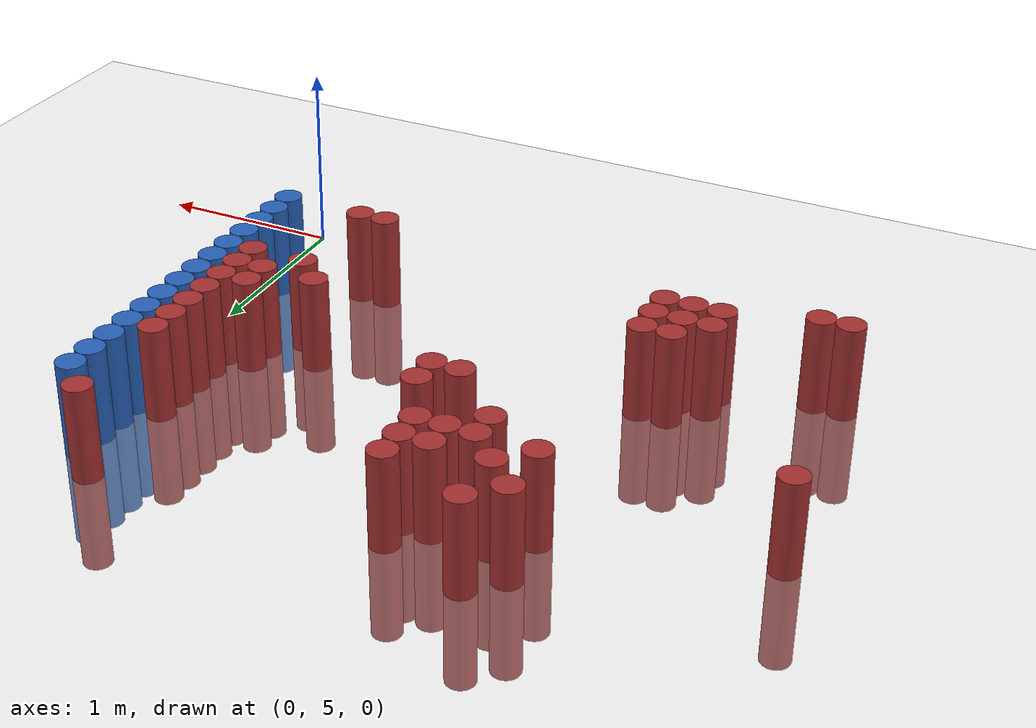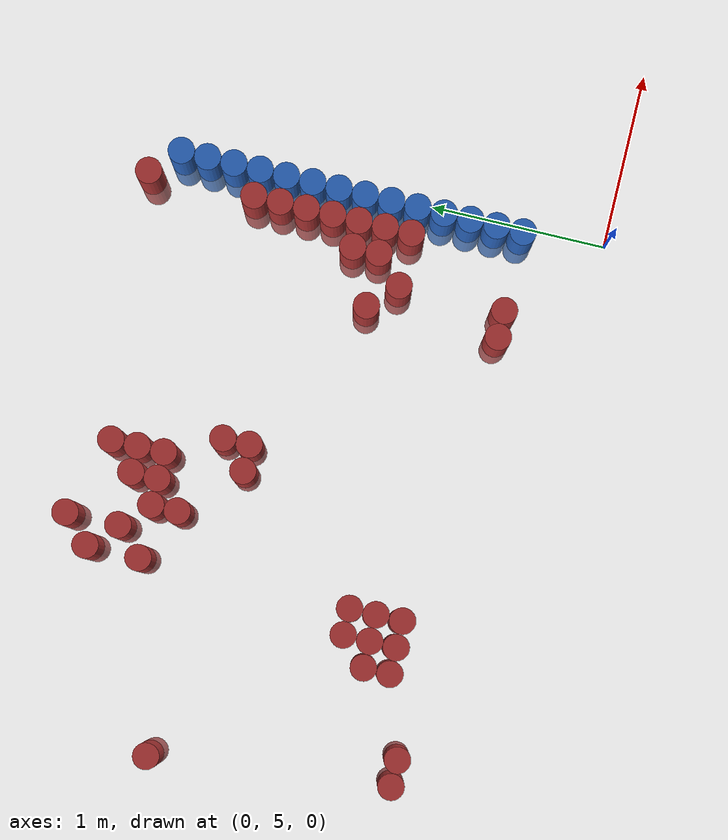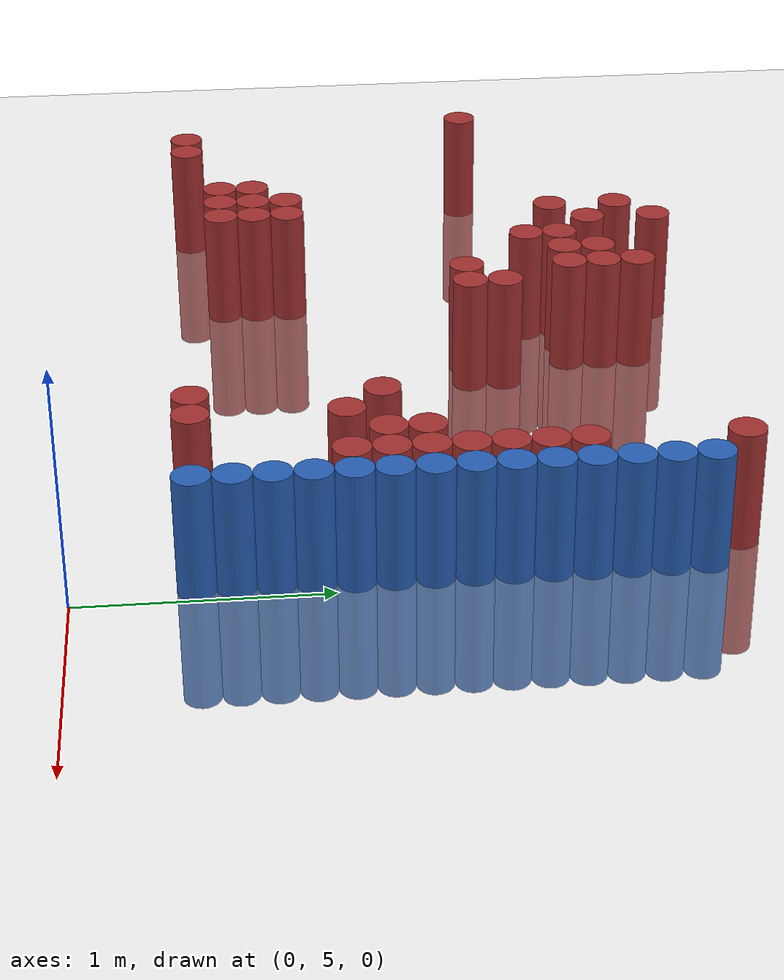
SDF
<sdf version="1.6">
 <world name="default">
  <model name="ground_plane">
   <static>1</static>
   <link name="link">
    <collision name="collision">
     <geometry><plane><normal>0 0 1</normal><size>100 100</size></plane></geometry>
     <surface><friction><ode><mu>100</mu><mu2>50</mu2></ode></friction></surface>
    </collision>
    <visual name="visual">
     <cast_shadows>0</cast_shadows>
     <geometry><plane><normal>0 0 1</normal><size>100 100</size></plane></geometry>
     <material>
      <script><uri>file://media/materials/scripts/gazebo.material</uri><name>Gazebo/Grey</name></script>
     </material>
    </visual>
   </link>
  </model>
  <model name="unit_cylinder_153">
   <static>1</static>
   <pose>-3.375000 6.825000 0.000000 0.000000 0.000000 0.000000</pose>
   <link name="link">
    <inertial>
     <mass>1</mass>
     <inertia><ixx>0.145833</ixx><ixy>0</ixy><ixz>0</ixz><iyy>0.145833</iyy><iyz>0</iyz><izz>0.125</izz></inertia>
    </inertial>
    <collision name="collision">
     <geometry><cylinder><radius>0.075000</radius><length>1</length></cylinder></geometry>
    </collision>
    <visual name="visual">
     <geometry><cylinder><radius>0.075000</radius><length>1</length></cylinder></geometry>
     <material>
      <ambient>0.648000 0.192000 0.192000 1</ambient>
      <diffuse>0.648000 0.192000 0.192000 1</diffuse>
     </material>
     <material>
      <script><name>Gazebo/Grey</name><uri>file://media/materials/scripts/gazebo.material</uri></script>
     </material>
    </visual>
   </link>
  </model>
  <model name="unit_cylinder_157">
   <static>1</static>
   <pose>-3.225000 5.475000 0.000000 0.000000 0.000000 0.000000</pose>
   <link name="link">
    <inertial>
     <mass>1</mass>
     <inertia><ixx>0.145833</ixx><ixy>0</ixy><ixz>0</ixz><iyy>0.145833</iyy><iyz>0</iyz><izz>0.125</izz></inertia>
    </inertial>
    <collision name="collision">
     <geometry><cylinder><radius>0.075000</radius><length>1</length></cylinder></geometry>
    </collision>
    <visual name="visual">
     <geometry><cylinder><radius>0.075000</radius><length>1</length></cylinder></geometry>
     <material>
      <ambient>0.648000 0.192000 0.192000 1</ambient>
      <diffuse>0.648000 0.192000 0.192000 1</diffuse>
     </material>
     <material>
      <script><name>Gazebo/Grey</name><uri>file://media/materials/scripts/gazebo.material</uri></script>
     </material>
    </visual>
   </link>
  </model>
  <model name="unit_cylinder_162">
   <static>1</static>
   <pose>-3.075000 5.475000 0.000000 0.000000 0.000000 0.000000</pose>
   <link name="link">
    <inertial>
     <mass>1</mass>
     <inertia><ixx>0.145833</ixx><ixy>0</ixy><ixz>0</ixz><iyy>0.145833</iyy><iyz>0</iyz><izz>0.125</izz></inertia>
    </inertial>
    <collision name="collision">
     <geometry><cylinder><radius>0.075000</radius><length>1</length></cylinder></geometry>
    </collision>
    <visual name="visual">
     <geometry><cylinder><radius>0.075000</radius><length>1</length></cylinder></geometry>
     <material>
      <ambient>0.648000 0.192000 0.192000 1</ambient>
      <diffuse>0.648000 0.192000 0.192000 1</diffuse>
     </material>
     <material>
      <script><name>Gazebo/Grey</name><uri>file://media/materials/scripts/gazebo.material</uri></script>
     </material>
    </visual>
   </link>
  </model>
  <model name="unit_cylinder_176">
   <static>1</static>
   <pose>-2.625000 5.625000 0.000000 0.000000 0.000000 0.000000</pose>
   <link name="link">
    <inertial>
     <mass>1</mass>
     <inertia><ixx>0.145833</ixx><ixy>0</ixy><ixz>0</ixz><iyy>0.145833</iyy><iyz>0</iyz><izz>0.125</izz></inertia>
    </inertial>
    <collision name="collision">
     <geometry><cylinder><radius>0.075000</radius><length>1</length></cylinder></geometry>
    </collision>
    <visual name="visual">
     <geometry><cylinder><radius>0.075000</radius><length>1</length></cylinder></geometry>
     <material>
      <ambient>0.648000 0.192000 0.192000 1</ambient>
      <diffuse>0.648000 0.192000 0.192000 1</diffuse>
     </material>
     <material>
      <script><name>Gazebo/Grey</name><uri>file://media/materials/scripts/gazebo.material</uri></script>
     </material>
    </visual>
   </link>
  </model>
  <model name="unit_cylinder_177">
   <static>1</static>
   <pose>-2.625000 5.775000 0.000000 0.000000 0.000000 0.000000</pose>
   <link name="link">
    <inertial>
     <mass>1</mass>
     <inertia><ixx>0.145833</ixx><ixy>0</ixy><ixz>0</ixz><iyy>0.145833</iyy><iyz>0</iyz><izz>0.125</izz></inertia>
    </inertial>
    <collision name="collision">
     <geometry><cylinder><radius>0.075000</radius><length>1</length></cylinder></geometry>
    </collision>
    <visual name="visual">
     <geometry><cylinder><radius>0.075000</radius><length>1</length></cylinder></geometry>
     <material>
      <ambient>0.648000 0.192000 0.192000 1</ambient>
      <diffuse>0.648000 0.192000 0.192000 1</diffuse>
     </material>
     <material>
      <script><name>Gazebo/Grey</name><uri>file://media/materials/scripts/gazebo.material</uri></script>
     </material>
    </visual>
   </link>
  </model>
  <model name="unit_cylinder_181">
   <static>1</static>
   <pose>-2.475000 5.625000 0.000000 0.000000 0.000000 0.000000</pose>
   <link name="link">
    <inertial>
     <mass>1</mass>
     <inertia><ixx>0.145833</ixx><ixy>0</ixy><ixz>0</ixz><iyy>0.145833</iyy><iyz>0</iyz><izz>0.125</izz></inertia>
    </inertial>
    <collision name="collision">
     <geometry><cylinder><radius>0.075000</radius><length>1</length></cylinder></geometry>
    </collision>
    <visual name="visual">
     <geometry><cylinder><radius>0.075000</radius><length>1</length></cylinder></geometry>
     <material>
      <ambient>0.648000 0.192000 0.192000 1</ambient>
      <diffuse>0.648000 0.192000 0.192000 1</diffuse>
     </material>
     <material>
      <script><name>Gazebo/Grey</name><uri>file://media/materials/scripts/gazebo.material</uri></script>
     </material>
    </visual>
   </link>
  </model>
  <model name="unit_cylinder_182">
   <static>1</static>
   <pose>-2.475000 5.775000 0.000000 0.000000 0.000000 0.000000</pose>
   <link name="link">
    <inertial>
     <mass>1</mass>
     <inertia><ixx>0.145833</ixx><ixy>0</ixy><ixz>0</ixz><iyy>0.145833</iyy><iyz>0</iyz><izz>0.125</izz></inertia>
    </inertial>
    <collision name="collision">
     <geometry><cylinder><radius>0.075000</radius><length>1</length></cylinder></geometry>
    </collision>
    <visual name="visual">
     <geometry><cylinder><radius>0.075000</radius><length>1</length></cylinder></geometry>
     <material>
      <ambient>0.648000 0.192000 0.192000 1</ambient>
      <diffuse>0.648000 0.192000 0.192000 1</diffuse>
     </material>
     <material>
      <script><name>Gazebo/Grey</name><uri>file://media/materials/scripts/gazebo.material</uri></script>
     </material>
    </visual>
   </link>
  </model>
  <model name="unit_cylinder_183">
   <static>1</static>
   <pose>-2.475000 5.925000 0.000000 0.000000 0.000000 0.000000</pose>
   <link name="link">
    <inertial>
     <mass>1</mass>
     <inertia><ixx>0.145833</ixx><ixy>0</ixy><ixz>0</ixz><iyy>0.145833</iyy><iyz>0</iyz><izz>0.125</izz></inertia>
    </inertial>
    <collision name="collision">
     <geometry><cylinder><radius>0.075000</radius><length>1</length></cylinder></geometry>
    </collision>
    <visual name="visual">
     <geometry><cylinder><radius>0.075000</radius><length>1</length></cylinder></geometry>
     <material>
      <ambient>0.648000 0.192000 0.192000 1</ambient>
      <diffuse>0.648000 0.192000 0.192000 1</diffuse>
     </material>
     <material>
      <script><name>Gazebo/Grey</name><uri>file://media/materials/scripts/gazebo.material</uri></script>
     </material>
    </visual>
   </link>
  </model>
  <model name="unit_cylinder_186">
   <static>1</static>
   <pose>-2.325000 5.625000 0.000000 0.000000 0.000000 0.000000</pose>
   <link name="link">
    <inertial>
     <mass>1</mass>
     <inertia><ixx>0.145833</ixx><ixy>0</ixy><ixz>0</ixz><iyy>0.145833</iyy><iyz>0</iyz><izz>0.125</izz></inertia>
    </inertial>
    <collision name="collision">
     <geometry><cylinder><radius>0.075000</radius><length>1</length></cylinder></geometry>
    </collision>
    <visual name="visual">
     <geometry><cylinder><radius>0.075000</radius><length>1</length></cylinder></geometry>
     <material>
      <ambient>0.648000 0.192000 0.192000 1</ambient>
      <diffuse>0.648000 0.192000 0.192000 1</diffuse>
     </material>
     <material>
      <script><name>Gazebo/Grey</name><uri>file://media/materials/scripts/gazebo.material</uri></script>
     </material>
    </visual>
   </link>
  </model>
  <model name="unit_cylinder_187">
   <static>1</static>
   <pose>-2.325000 5.775000 0.000000 0.000000 0.000000 0.000000</pose>
   <link name="link">
    <inertial>
     <mass>1</mass>
     <inertia><ixx>0.145833</ixx><ixy>0</ixy><ixz>0</ixz><iyy>0.145833</iyy><iyz>0</iyz><izz>0.125</izz></inertia>
    </inertial>
    <collision name="collision">
     <geometry><cylinder><radius>0.075000</radius><length>1</length></cylinder></geometry>
    </collision>
    <visual name="visual">
     <geometry><cylinder><radius>0.075000</radius><length>1</length></cylinder></geometry>
     <material>
      <ambient>0.648000 0.192000 0.192000 1</ambient>
      <diffuse>0.648000 0.192000 0.192000 1</diffuse>
     </material>
     <material>
      <script><name>Gazebo/Grey</name><uri>file://media/materials/scripts/gazebo.material</uri></script>
     </material>
    </visual>
   </link>
  </model>
  <model name="unit_cylinder_188">
   <static>1</static>
   <pose>-2.325000 5.925000 0.000000 0.000000 0.000000 0.000000</pose>
   <link name="link">
    <inertial>
     <mass>1</mass>
     <inertia><ixx>0.145833</ixx><ixy>0</ixy><ixz>0</ixz><iyy>0.145833</iyy><iyz>0</iyz><izz>0.125</izz></inertia>
    </inertial>
    <collision name="collision">
     <geometry><cylinder><radius>0.075000</radius><length>1</length></cylinder></geometry>
    </collision>
    <visual name="visual">
     <geometry><cylinder><radius>0.075000</radius><length>1</length></cylinder></geometry>
     <material>
      <ambient>0.648000 0.192000 0.192000 1</ambient>
      <diffuse>0.648000 0.192000 0.192000 1</diffuse>
     </material>
     <material>
      <script><name>Gazebo/Grey</name><uri>file://media/materials/scripts/gazebo.material</uri></script>
     </material>
    </visual>
   </link>
  </model>
  <model name="unit_cylinder_189">
   <static>1</static>
   <pose>-2.325000 7.125000 0.000000 0.000000 0.000000 0.000000</pose>
   <link name="link">
    <inertial>
     <mass>1</mass>
     <inertia><ixx>0.145833</ixx><ixy>0</ixy><ixz>0</ixz><iyy>0.145833</iyy><iyz>0</iyz><izz>0.125</izz></inertia>
    </inertial>
    <collision name="collision">
     <geometry><cylinder><radius>0.075000</radius><length>1</length></cylinder></geometry>
    </collision>
    <visual name="visual">
     <geometry><cylinder><radius>0.075000</radius><length>1</length></cylinder></geometry>
     <material>
      <ambient>0.648000 0.192000 0.192000 1</ambient>
      <diffuse>0.648000 0.192000 0.192000 1</diffuse>
     </material>
     <material>
      <script><name>Gazebo/Grey</name><uri>file://media/materials/scripts/gazebo.material</uri></script>
     </material>
    </visual>
   </link>
  </model>
  <model name="unit_cylinder_190">
   <static>1</static>
   <pose>-2.325000 7.425000 0.000000 0.000000 0.000000 0.000000</pose>
   <link name="link">
    <inertial>
     <mass>1</mass>
     <inertia><ixx>0.145833</ixx><ixy>0</ixy><ixz>0</ixz><iyy>0.145833</iyy><iyz>0</iyz><izz>0.125</izz></inertia>
    </inertial>
    <collision name="collision">
     <geometry><cylinder><radius>0.075000</radius><length>1</length></cylinder></geometry>
    </collision>
    <visual name="visual">
     <geometry><cylinder><radius>0.075000</radius><length>1</length></cylinder></geometry>
     <material>
      <ambient>0.648000 0.192000 0.192000 1</ambient>
      <diffuse>0.648000 0.192000 0.192000 1</diffuse>
     </material>
     <material>
      <script><name>Gazebo/Grey</name><uri>file://media/materials/scripts/gazebo.material</uri></script>
     </material>
    </visual>
   </link>
  </model>
  <model name="unit_cylinder_194">
   <static>1</static>
   <pose>-2.175000 7.275000 0.000000 0.000000 0.000000 0.000000</pose>
   <link name="link">
    <inertial>
     <mass>1</mass>
     <inertia><ixx>0.145833</ixx><ixy>0</ixy><ixz>0</ixz><iyy>0.145833</iyy><iyz>0</iyz><izz>0.125</izz></inertia>
    </inertial>
    <collision name="collision">
     <geometry><cylinder><radius>0.075000</radius><length>1</length></cylinder></geometry>
    </collision>
    <visual name="visual">
     <geometry><cylinder><radius>0.075000</radius><length>1</length></cylinder></geometry>
     <material>
      <ambient>0.648000 0.192000 0.192000 1</ambient>
      <diffuse>0.648000 0.192000 0.192000 1</diffuse>
     </material>
     <material>
      <script><name>Gazebo/Grey</name><uri>file://media/materials/scripts/gazebo.material</uri></script>
     </material>
    </visual>
   </link>
  </model>
  <model name="unit_cylinder_195">
   <static>1</static>
   <pose>-2.175000 7.575000 0.000000 0.000000 0.000000 0.000000</pose>
   <link name="link">
    <inertial>
     <mass>1</mass>
     <inertia><ixx>0.145833</ixx><ixy>0</ixy><ixz>0</ixz><iyy>0.145833</iyy><iyz>0</iyz><izz>0.125</izz></inertia>
    </inertial>
    <collision name="collision">
     <geometry><cylinder><radius>0.075000</radius><length>1</length></cylinder></geometry>
    </collision>
    <visual name="visual">
     <geometry><cylinder><radius>0.075000</radius><length>1</length></cylinder></geometry>
     <material>
      <ambient>0.648000 0.192000 0.192000 1</ambient>
      <diffuse>0.648000 0.192000 0.192000 1</diffuse>
     </material>
     <material>
      <script><name>Gazebo/Grey</name><uri>file://media/materials/scripts/gazebo.material</uri></script>
     </material>
    </visual>
   </link>
  </model>
  <model name="unit_cylinder_198">
   <static>1</static>
   <pose>-2.025000 6.975000 0.000000 0.000000 0.000000 0.000000</pose>
   <link name="link">
    <inertial>
     <mass>1</mass>
     <inertia><ixx>0.145833</ixx><ixy>0</ixy><ixz>0</ixz><iyy>0.145833</iyy><iyz>0</iyz><izz>0.125</izz></inertia>
    </inertial>
    <collision name="collision">
     <geometry><cylinder><radius>0.075000</radius><length>1</length></cylinder></geometry>
    </collision>
    <visual name="visual">
     <geometry><cylinder><radius>0.075000</radius><length>1</length></cylinder></geometry>
     <material>
      <ambient>0.648000 0.192000 0.192000 1</ambient>
      <diffuse>0.648000 0.192000 0.192000 1</diffuse>
     </material>
     <material>
      <script><name>Gazebo/Grey</name><uri>file://media/materials/scripts/gazebo.material</uri></script>
     </material>
    </visual>
   </link>
  </model>
  <model name="unit_cylinder_199">
   <static>1</static>
   <pose>-2.025000 7.125000 0.000000 0.000000 0.000000 0.000000</pose>
   <link name="link">
    <inertial>
     <mass>1</mass>
     <inertia><ixx>0.145833</ixx><ixy>0</ixy><ixz>0</ixz><iyy>0.145833</iyy><iyz>0</iyz><izz>0.125</izz></inertia>
    </inertial>
    <collision name="collision">
     <geometry><cylinder><radius>0.075000</radius><length>1</length></cylinder></geometry>
    </collision>
    <visual name="visual">
     <geometry><cylinder><radius>0.075000</radius><length>1</length></cylinder></geometry>
     <material>
      <ambient>0.648000 0.192000 0.192000 1</ambient>
      <diffuse>0.648000 0.192000 0.192000 1</diffuse>
     </material>
     <material>
      <script><name>Gazebo/Grey</name><uri>file://media/materials/scripts/gazebo.material</uri></script>
     </material>
    </visual>
   </link>
  </model>
  <model name="unit_cylinder_200">
   <static>1</static>
   <pose>-1.875000 7.125000 0.000000 0.000000 0.000000 0.000000</pose>
   <link name="link">
    <inertial>
     <mass>1</mass>
     <inertia><ixx>0.145833</ixx><ixy>0</ixy><ixz>0</ixz><iyy>0.145833</iyy><iyz>0</iyz><izz>0.125</izz></inertia>
    </inertial>
    <collision name="collision">
     <geometry><cylinder><radius>0.075000</radius><length>1</length></cylinder></geometry>
    </collision>
    <visual name="visual">
     <geometry><cylinder><radius>0.075000</radius><length>1</length></cylinder></geometry>
     <material>
      <ambient>0.648000 0.192000 0.192000 1</ambient>
      <diffuse>0.648000 0.192000 0.192000 1</diffuse>
     </material>
     <material>
      <script><name>Gazebo/Grey</name><uri>file://media/materials/scripts/gazebo.material</uri></script>
     </material>
    </visual>
   </link>
  </model>
  <model name="unit_cylinder_201">
   <static>1</static>
   <pose>-1.875000 7.275000 0.000000 0.000000 0.000000 0.000000</pose>
   <link name="link">
    <inertial>
     <mass>1</mass>
     <inertia><ixx>0.145833</ixx><ixy>0</ixy><ixz>0</ixz><iyy>0.145833</iyy><iyz>0</iyz><izz>0.125</izz></inertia>
    </inertial>
    <collision name="collision">
     <geometry><cylinder><radius>0.075000</radius><length>1</length></cylinder></geometry>
    </collision>
    <visual name="visual">
     <geometry><cylinder><radius>0.075000</radius><length>1</length></cylinder></geometry>
     <material>
      <ambient>0.648000 0.192000 0.192000 1</ambient>
      <diffuse>0.648000 0.192000 0.192000 1</diffuse>
     </material>
     <material>
      <script><name>Gazebo/Grey</name><uri>file://media/materials/scripts/gazebo.material</uri></script>
     </material>
    </visual>
   </link>
  </model>
  <model name="unit_cylinder_202">
   <static>1</static>
   <pose>-1.725000 6.675000 0.000000 0.000000 0.000000 0.000000</pose>
   <link name="link">
    <inertial>
     <mass>1</mass>
     <inertia><ixx>0.145833</ixx><ixy>0</ixy><ixz>0</ixz><iyy>0.145833</iyy><iyz>0</iyz><izz>0.125</izz></inertia>
    </inertial>
    <collision name="collision">
     <geometry><cylinder><radius>0.075000</radius><length>1</length></cylinder></geometry>
    </collision>
    <visual name="visual">
     <geometry><cylinder><radius>0.075000</radius><length>1</length></cylinder></geometry>
     <material>
      <ambient>0.648000 0.192000 0.192000 1</ambient>
      <diffuse>0.648000 0.192000 0.192000 1</diffuse>
     </material>
     <material>
      <script><name>Gazebo/Grey</name><uri>file://media/materials/scripts/gazebo.material</uri></script>
     </material>
    </visual>
   </link>
  </model>
  <model name="unit_cylinder_203">
   <static>1</static>
   <pose>-1.725000 7.125000 0.000000 0.000000 0.000000 0.000000</pose>
   <link name="link">
    <inertial>
     <mass>1</mass>
     <inertia><ixx>0.145833</ixx><ixy>0</ixy><ixz>0</ixz><iyy>0.145833</iyy><iyz>0</iyz><izz>0.125</izz></inertia>
    </inertial>
    <collision name="collision">
     <geometry><cylinder><radius>0.075000</radius><length>1</length></cylinder></geometry>
    </collision>
    <visual name="visual">
     <geometry><cylinder><radius>0.075000</radius><length>1</length></cylinder></geometry>
     <material>
      <ambient>0.648000 0.192000 0.192000 1</ambient>
      <diffuse>0.648000 0.192000 0.192000 1</diffuse>
     </material>
     <material>
      <script><name>Gazebo/Grey</name><uri>file://media/materials/scripts/gazebo.material</uri></script>
     </material>
    </visual>
   </link>
  </model>
  <model name="unit_cylinder_204">
   <static>1</static>
   <pose>-1.725000 7.275000 0.000000 0.000000 0.000000 0.000000</pose>
   <link name="link">
    <inertial>
     <mass>1</mass>
     <inertia><ixx>0.145833</ixx><ixy>0</ixy><ixz>0</ixz><iyy>0.145833</iyy><iyz>0</iyz><izz>0.125</izz></inertia>
    </inertial>
    <collision name="collision">
     <geometry><cylinder><radius>0.075000</radius><length>1</length></cylinder></geometry>
    </collision>
    <visual name="visual">
     <geometry><cylinder><radius>0.075000</radius><length>1</length></cylinder></geometry>
     <material>
      <ambient>0.648000 0.192000 0.192000 1</ambient>
      <diffuse>0.648000 0.192000 0.192000 1</diffuse>
     </material>
     <material>
      <script><name>Gazebo/Grey</name><uri>file://media/materials/scripts/gazebo.material</uri></script>
     </material>
    </visual>
   </link>
  </model>
  <model name="unit_cylinder_205">
   <static>1</static>
   <pose>-1.725000 7.425000 0.000000 0.000000 0.000000 0.000000</pose>
   <link name="link">
    <inertial>
     <mass>1</mass>
     <inertia><ixx>0.145833</ixx><ixy>0</ixy><ixz>0</ixz><iyy>0.145833</iyy><iyz>0</iyz><izz>0.125</izz></inertia>
    </inertial>
    <collision name="collision">
     <geometry><cylinder><radius>0.075000</radius><length>1</length></cylinder></geometry>
    </collision>
    <visual name="visual">
     <geometry><cylinder><radius>0.075000</radius><length>1</length></cylinder></geometry>
     <material>
      <ambient>0.648000 0.192000 0.192000 1</ambient>
      <diffuse>0.648000 0.192000 0.192000 1</diffuse>
     </material>
     <material>
      <script><name>Gazebo/Grey</name><uri>file://media/materials/scripts/gazebo.material</uri></script>
     </material>
    </visual>
   </link>
  </model>
  <model name="unit_cylinder_206">
   <static>1</static>
   <pose>-1.575000 6.675000 0.000000 0.000000 0.000000 0.000000</pose>
   <link name="link">
    <inertial>
     <mass>1</mass>
     <inertia><ixx>0.145833</ixx><ixy>0</ixy><ixz>0</ixz><iyy>0.145833</iyy><iyz>0</iyz><izz>0.125</izz></inertia>
    </inertial>
    <collision name="collision">
     <geometry><cylinder><radius>0.075000</radius><length>1</length></cylinder></geometry>
    </collision>
    <visual name="visual">
     <geometry><cylinder><radius>0.075000</radius><length>1</length></cylinder></geometry>
     <material>
      <ambient>0.648000 0.192000 0.192000 1</ambient>
      <diffuse>0.648000 0.192000 0.192000 1</diffuse>
     </material>
     <material>
      <script><name>Gazebo/Grey</name><uri>file://media/materials/scripts/gazebo.material</uri></script>
     </material>
    </visual>
   </link>
  </model>
  <model name="unit_cylinder_207">
   <static>1</static>
   <pose>-1.575000 6.825000 0.000000 0.000000 0.000000 0.000000</pose>
   <link name="link">
    <inertial>
     <mass>1</mass>
     <inertia><ixx>0.145833</ixx><ixy>0</ixy><ixz>0</ixz><iyy>0.145833</iyy><iyz>0</iyz><izz>0.125</izz></inertia>
    </inertial>
    <collision name="collision">
     <geometry><cylinder><radius>0.075000</radius><length>1</length></cylinder></geometry>
    </collision>
    <visual name="visual">
     <geometry><cylinder><radius>0.075000</radius><length>1</length></cylinder></geometry>
     <material>
      <ambient>0.648000 0.192000 0.192000 1</ambient>
      <diffuse>0.648000 0.192000 0.192000 1</diffuse>
     </material>
     <material>
      <script><name>Gazebo/Grey</name><uri>file://media/materials/scripts/gazebo.material</uri></script>
     </material>
    </visual>
   </link>
  </model>
  <model name="unit_cylinder_210">
   <static>1</static>
   <pose>-0.675000 5.475000 0.000000 0.000000 0.000000 0.000000</pose>
   <link name="link">
    <inertial>
     <mass>1</mass>
     <inertia><ixx>0.145833</ixx><ixy>0</ixy><ixz>0</ixz><iyy>0.145833</iyy><iyz>0</iyz><izz>0.125</izz></inertia>
    </inertial>
    <collision name="collision">
     <geometry><cylinder><radius>0.075000</radius><length>1</length></cylinder></geometry>
    </collision>
    <visual name="visual">
     <geometry><cylinder><radius>0.075000</radius><length>1</length></cylinder></geometry>
     <material>
      <ambient>0.648000 0.192000 0.192000 1</ambient>
      <diffuse>0.648000 0.192000 0.192000 1</diffuse>
     </material>
     <material>
      <script><name>Gazebo/Grey</name><uri>file://media/materials/scripts/gazebo.material</uri></script>
     </material>
    </visual>
   </link>
  </model>
  <model name="unit_cylinder_211">
   <static>1</static>
   <pose>-0.675000 6.225000 0.000000 0.000000 0.000000 0.000000</pose>
   <link name="link">
    <inertial>
     <mass>1</mass>
     <inertia><ixx>0.145833</ixx><ixy>0</ixy><ixz>0</ixz><iyy>0.145833</iyy><iyz>0</iyz><izz>0.125</izz></inertia>
    </inertial>
    <collision name="collision">
     <geometry><cylinder><radius>0.075000</radius><length>1</length></cylinder></geometry>
    </collision>
    <visual name="visual">
     <geometry><cylinder><radius>0.075000</radius><length>1</length></cylinder></geometry>
     <material>
      <ambient>0.648000 0.192000 0.192000 1</ambient>
      <diffuse>0.648000 0.192000 0.192000 1</diffuse>
     </material>
     <material>
      <script><name>Gazebo/Grey</name><uri>file://media/materials/scripts/gazebo.material</uri></script>
     </material>
    </visual>
   </link>
  </model>
  <model name="unit_cylinder_214">
   <static>1</static>
   <pose>-0.525000 5.475000 0.000000 0.000000 0.000000 0.000000</pose>
   <link name="link">
    <inertial>
     <mass>1</mass>
     <inertia><ixx>0.145833</ixx><ixy>0</ixy><ixz>0</ixz><iyy>0.145833</iyy><iyz>0</iyz><izz>0.125</izz></inertia>
    </inertial>
    <collision name="collision">
     <geometry><cylinder><radius>0.075000</radius><length>1</length></cylinder></geometry>
    </collision>
    <visual name="visual">
     <geometry><cylinder><radius>0.075000</radius><length>1</length></cylinder></geometry>
     <material>
      <ambient>0.648000 0.192000 0.192000 1</ambient>
      <diffuse>0.648000 0.192000 0.192000 1</diffuse>
     </material>
     <material>
      <script><name>Gazebo/Grey</name><uri>file://media/materials/scripts/gazebo.material</uri></script>
     </material>
    </visual>
   </link>
  </model>
  <model name="unit_cylinder_215">
   <static>1</static>
   <pose>-0.525000 6.075000 0.000000 0.000000 0.000000 0.000000</pose>
   <link name="link">
    <inertial>
     <mass>1</mass>
     <inertia><ixx>0.145833</ixx><ixy>0</ixy><ixz>0</ixz><iyy>0.145833</iyy><iyz>0</iyz><izz>0.125</izz></inertia>
    </inertial>
    <collision name="collision">
     <geometry><cylinder><radius>0.075000</radius><length>1</length></cylinder></geometry>
    </collision>
    <visual name="visual">
     <geometry><cylinder><radius>0.075000</radius><length>1</length></cylinder></geometry>
     <material>
      <ambient>0.648000 0.192000 0.192000 1</ambient>
      <diffuse>0.648000 0.192000 0.192000 1</diffuse>
     </material>
     <material>
      <script><name>Gazebo/Grey</name><uri>file://media/materials/scripts/gazebo.material</uri></script>
     </material>
    </visual>
   </link>
  </model>
  <model name="unit_cylinder_217">
   <static>1</static>
   <pose>-0.375000 6.225000 0.000000 0.000000 0.000000 0.000000</pose>
   <link name="link">
    <inertial>
     <mass>1</mass>
     <inertia><ixx>0.145833</ixx><ixy>0</ixy><ixz>0</ixz><iyy>0.145833</iyy><iyz>0</iyz><izz>0.125</izz></inertia>
    </inertial>
    <collision name="collision">
     <geometry><cylinder><radius>0.075000</radius><length>1</length></cylinder></geometry>
    </collision>
    <visual name="visual">
     <geometry><cylinder><radius>0.075000</radius><length>1</length></cylinder></geometry>
     <material>
      <ambient>0.648000 0.192000 0.192000 1</ambient>
      <diffuse>0.648000 0.192000 0.192000 1</diffuse>
     </material>
     <material>
      <script><name>Gazebo/Grey</name><uri>file://media/materials/scripts/gazebo.material</uri></script>
     </material>
    </visual>
   </link>
  </model>
  <model name="unit_cylinder_218">
   <static>1</static>
   <pose>-0.375000 6.375000 0.000000 0.000000 0.000000 0.000000</pose>
   <link name="link">
    <inertial>
     <mass>1</mass>
     <inertia><ixx>0.145833</ixx><ixy>0</ixy><ixz>0</ixz><iyy>0.145833</iyy><iyz>0</iyz><izz>0.125</izz></inertia>
    </inertial>
    <collision name="collision">
     <geometry><cylinder><radius>0.075000</radius><length>1</length></cylinder></geometry>
    </collision>
    <visual name="visual">
     <geometry><cylinder><radius>0.075000</radius><length>1</length></cylinder></geometry>
     <material>
      <ambient>0.648000 0.192000 0.192000 1</ambient>
      <diffuse>0.648000 0.192000 0.192000 1</diffuse>
     </material>
     <material>
      <script><name>Gazebo/Grey</name><uri>file://media/materials/scripts/gazebo.material</uri></script>
     </material>
    </visual>
   </link>
  </model>
  <model name="unit_cylinder_221">
   <static>1</static>
   <pose>-0.225000 6.075000 0.000000 0.000000 0.000000 0.000000</pose>
   <link name="link">
    <inertial>
     <mass>1</mass>
     <inertia><ixx>0.145833</ixx><ixy>0</ixy><ixz>0</ixz><iyy>0.145833</iyy><iyz>0</iyz><izz>0.125</izz></inertia>
    </inertial>
    <collision name="collision">
     <geometry><cylinder><radius>0.075000</radius><length>1</length></cylinder></geometry>
    </collision>
    <visual name="visual">
     <geometry><cylinder><radius>0.075000</radius><length>1</length></cylinder></geometry>
     <material>
      <ambient>0.648000 0.192000 0.192000 1</ambient>
      <diffuse>0.648000 0.192000 0.192000 1</diffuse>
     </material>
     <material>
      <script><name>Gazebo/Grey</name><uri>file://media/materials/scripts/gazebo.material</uri></script>
     </material>
    </visual>
   </link>
  </model>
  <model name="unit_cylinder_222">
   <static>1</static>
   <pose>-0.225000 6.225000 0.000000 0.000000 0.000000 0.000000</pose>
   <link name="link">
    <inertial>
     <mass>1</mass>
     <inertia><ixx>0.145833</ixx><ixy>0</ixy><ixz>0</ixz><iyy>0.145833</iyy><iyz>0</iyz><izz>0.125</izz></inertia>
    </inertial>
    <collision name="collision">
     <geometry><cylinder><radius>0.075000</radius><length>1</length></cylinder></geometry>
    </collision>
    <visual name="visual">
     <geometry><cylinder><radius>0.075000</radius><length>1</length></cylinder></geometry>
     <material>
      <ambient>0.648000 0.192000 0.192000 1</ambient>
      <diffuse>0.648000 0.192000 0.192000 1</diffuse>
     </material>
     <material>
      <script><name>Gazebo/Grey</name><uri>file://media/materials/scripts/gazebo.material</uri></script>
     </material>
    </visual>
   </link>
  </model>
  <model name="unit_cylinder_223">
   <static>1</static>
   <pose>-0.225000 6.375000 0.000000 0.000000 0.000000 0.000000</pose>
   <link name="link">
    <inertial>
     <mass>1</mass>
     <inertia><ixx>0.145833</ixx><ixy>0</ixy><ixz>0</ixz><iyy>0.145833</iyy><iyz>0</iyz><izz>0.125</izz></inertia>
    </inertial>
    <collision name="collision">
     <geometry><cylinder><radius>0.075000</radius><length>1</length></cylinder></geometry>
    </collision>
    <visual name="visual">
     <geometry><cylinder><radius>0.075000</radius><length>1</length></cylinder></geometry>
     <material>
      <ambient>0.648000 0.192000 0.192000 1</ambient>
      <diffuse>0.648000 0.192000 0.192000 1</diffuse>
     </material>
     <material>
      <script><name>Gazebo/Grey</name><uri>file://media/materials/scripts/gazebo.material</uri></script>
     </material>
    </visual>
   </link>
  </model>
  <model name="unit_cylinder_224">
   <static>1</static>
   <pose>-0.225000 6.525000 0.000000 0.000000 0.000000 0.000000</pose>
   <link name="link">
    <inertial>
     <mass>1</mass>
     <inertia><ixx>0.145833</ixx><ixy>0</ixy><ixz>0</ixz><iyy>0.145833</iyy><iyz>0</iyz><izz>0.125</izz></inertia>
    </inertial>
    <collision name="collision">
     <geometry><cylinder><radius>0.075000</radius><length>1</length></cylinder></geometry>
    </collision>
    <visual name="visual">
     <geometry><cylinder><radius>0.075000</radius><length>1</length></cylinder></geometry>
     <material>
      <ambient>0.648000 0.192000 0.192000 1</ambient>
      <diffuse>0.648000 0.192000 0.192000 1</diffuse>
     </material>
     <material>
      <script><name>Gazebo/Grey</name><uri>file://media/materials/scripts/gazebo.material</uri></script>
     </material>
    </visual>
   </link>
  </model>
  <model name="unit_cylinder_225">
   <static>1</static>
   <pose>-0.225000 6.675000 0.000000 0.000000 0.000000 0.000000</pose>
   <link name="link">
    <inertial>
     <mass>1</mass>
     <inertia><ixx>0.145833</ixx><ixy>0</ixy><ixz>0</ixz><iyy>0.145833</iyy><iyz>0</iyz><izz>0.125</izz></inertia>
    </inertial>
    <collision name="collision">
     <geometry><cylinder><radius>0.075000</radius><length>1</length></cylinder></geometry>
    </collision>
    <visual name="visual">
     <geometry><cylinder><radius>0.075000</radius><length>1</length></cylinder></geometry>
     <material>
      <ambient>0.648000 0.192000 0.192000 1</ambient>
      <diffuse>0.648000 0.192000 0.192000 1</diffuse>
     </material>
     <material>
      <script><name>Gazebo/Grey</name><uri>file://media/materials/scripts/gazebo.material</uri></script>
     </material>
    </visual>
   </link>
  </model>
  <model name="unit_cylinder_226">
   <static>1</static>
   <pose>-0.225000 6.825000 0.000000 0.000000 0.000000 0.000000</pose>
   <link name="link">
    <inertial>
     <mass>1</mass>
     <inertia><ixx>0.145833</ixx><ixy>0</ixy><ixz>0</ixz><iyy>0.145833</iyy><iyz>0</iyz><izz>0.125</izz></inertia>
    </inertial>
    <collision name="collision">
     <geometry><cylinder><radius>0.075000</radius><length>1</length></cylinder></geometry>
    </collision>
    <visual name="visual">
     <geometry><cylinder><radius>0.075000</radius><length>1</length></cylinder></geometry>
     <material>
      <ambient>0.648000 0.192000 0.192000 1</ambient>
      <diffuse>0.648000 0.192000 0.192000 1</diffuse>
     </material>
     <material>
      <script><name>Gazebo/Grey</name><uri>file://media/materials/scripts/gazebo.material</uri></script>
     </material>
    </visual>
   </link>
  </model>
  <model name="unit_cylinder_227">
   <static>1</static>
   <pose>-0.225000 6.975000 0.000000 0.000000 0.000000 0.000000</pose>
   <link name="link">
    <inertial>
     <mass>1</mass>
     <inertia><ixx>0.145833</ixx><ixy>0</ixy><ixz>0</ixz><iyy>0.145833</iyy><iyz>0</iyz><izz>0.125</izz></inertia>
    </inertial>
    <collision name="collision">
     <geometry><cylinder><radius>0.075000</radius><length>1</length></cylinder></geometry>
    </collision>
    <visual name="visual">
     <geometry><cylinder><radius>0.075000</radius><length>1</length></cylinder></geometry>
     <material>
      <ambient>0.648000 0.192000 0.192000 1</ambient>
      <diffuse>0.648000 0.192000 0.192000 1</diffuse>
     </material>
     <material>
      <script><name>Gazebo/Grey</name><uri>file://media/materials/scripts/gazebo.material</uri></script>
     </material>
    </visual>
   </link>
  </model>
  <model name="unit_cylinder_228">
   <static>1</static>
   <pose>-0.225000 7.575000 0.000000 0.000000 0.000000 0.000000</pose>
   <link name="link">
    <inertial>
     <mass>1</mass>
     <inertia><ixx>0.145833</ixx><ixy>0</ixy><ixz>0</ixz><iyy>0.145833</iyy><iyz>0</iyz><izz>0.125</izz></inertia>
    </inertial>
    <collision name="collision">
     <geometry><cylinder><radius>0.075000</radius><length>1</length></cylinder></geometry>
    </collision>
    <visual name="visual">
     <geometry><cylinder><radius>0.075000</radius><length>1</length></cylinder></geometry>
     <material>
      <ambient>0.648000 0.192000 0.192000 1</ambient>
      <diffuse>0.648000 0.192000 0.192000 1</diffuse>
     </material>
     <material>
      <script><name>Gazebo/Grey</name><uri>file://media/materials/scripts/gazebo.material</uri></script>
     </material>
    </visual>
   </link>
  </model>
  <model name="unit_cylinder_238">
   <static>1</static>
   <pose>-0.075000 5.475000 0.000000 0.000000 0.000000 0.000000</pose>
   <link name="link">
    <inertial>
     <mass>1</mass>
     <inertia><ixx>0.145833</ixx><ixy>0</ixy><ixz>0</ixz><iyy>0.145833</iyy><iyz>0</iyz><izz>0.125</izz></inertia>
    </inertial>
    <collision name="collision">
     <geometry><cylinder><radius>0.075000</radius><length>1</length></cylinder></geometry>
    </collision>
    <visual name="visual">
     <geometry><cylinder><radius>0.075000</radius><length>1</length></cylinder></geometry>
     <material>
      <ambient>0.152000 0.379000 0.720000 1</ambient>
      <diffuse>0.152000 0.379000 0.720000 1</diffuse>
     </material>
     <material>
      <script><name>Gazebo/Grey</name><uri>file://media/materials/scripts/gazebo.material</uri></script>
     </material>
    </visual>
   </link>
  </model>
  <model name="unit_cylinder_239">
   <static>1</static>
   <pose>-0.075000 5.625000 0.000000 0.000000 0.000000 0.000000</pose>
   <link name="link">
    <inertial>
     <mass>1</mass>
     <inertia><ixx>0.145833</ixx><ixy>0</ixy><ixz>0</ixz><iyy>0.145833</iyy><iyz>0</iyz><izz>0.125</izz></inertia>
    </inertial>
    <collision name="collision">
     <geometry><cylinder><radius>0.075000</radius><length>1</length></cylinder></geometry>
    </collision>
    <visual name="visual">
     <geometry><cylinder><radius>0.075000</radius><length>1</length></cylinder></geometry>
     <material>
      <ambient>0.152000 0.379000 0.720000 1</ambient>
      <diffuse>0.152000 0.379000 0.720000 1</diffuse>
     </material>
     <material>
      <script><name>Gazebo/Grey</name><uri>file://media/materials/scripts/gazebo.material</uri></script>
     </material>
    </visual>
   </link>
  </model>
  <model name="unit_cylinder_240">
   <static>1</static>
   <pose>-0.075000 5.775000 0.000000 0.000000 0.000000 0.000000</pose>
   <link name="link">
    <inertial>
     <mass>1</mass>
     <inertia><ixx>0.145833</ixx><ixy>0</ixy><ixz>0</ixz><iyy>0.145833</iyy><iyz>0</iyz><izz>0.125</izz></inertia>
    </inertial>
    <collision name="collision">
     <geometry><cylinder><radius>0.075000</radius><length>1</length></cylinder></geometry>
    </collision>
    <visual name="visual">
     <geometry><cylinder><radius>0.075000</radius><length>1</length></cylinder></geometry>
     <material>
      <ambient>0.152000 0.379000 0.720000 1</ambient>
      <diffuse>0.152000 0.379000 0.720000 1</diffuse>
     </material>
     <material>
      <script><name>Gazebo/Grey</name><uri>file://media/materials/scripts/gazebo.material</uri></script>
     </material>
    </visual>
   </link>
  </model>
  <model name="unit_cylinder_241">
   <static>1</static>
   <pose>-0.075000 5.925000 0.000000 0.000000 0.000000 0.000000</pose>
   <link name="link">
    <inertial>
     <mass>1</mass>
     <inertia><ixx>0.145833</ixx><ixy>0</ixy><ixz>0</ixz><iyy>0.145833</iyy><iyz>0</iyz><izz>0.125</izz></inertia>
    </inertial>
    <collision name="collision">
     <geometry><cylinder><radius>0.075000</radius><length>1</length></cylinder></geometry>
    </collision>
    <visual name="visual">
     <geometry><cylinder><radius>0.075000</radius><length>1</length></cylinder></geometry>
     <material>
      <ambient>0.152000 0.379000 0.720000 1</ambient>
      <diffuse>0.152000 0.379000 0.720000 1</diffuse>
     </material>
     <material>
      <script><name>Gazebo/Grey</name><uri>file://media/materials/scripts/gazebo.material</uri></script>
     </material>
    </visual>
   </link>
  </model>
  <model name="unit_cylinder_242">
   <static>1</static>
   <pose>-0.075000 6.075000 0.000000 0.000000 0.000000 0.000000</pose>
   <link name="link">
    <inertial>
     <mass>1</mass>
     <inertia><ixx>0.145833</ixx><ixy>0</ixy><ixz>0</ixz><iyy>0.145833</iyy><iyz>0</iyz><izz>0.125</izz></inertia>
    </inertial>
    <collision name="collision">
     <geometry><cylinder><radius>0.075000</radius><length>1</length></cylinder></geometry>
    </collision>
    <visual name="visual">
     <geometry><cylinder><radius>0.075000</radius><length>1</length></cylinder></geometry>
     <material>
      <ambient>0.152000 0.379000 0.720000 1</ambient>
      <diffuse>0.152000 0.379000 0.720000 1</diffuse>
     </material>
     <material>
      <script><name>Gazebo/Grey</name><uri>file://media/materials/scripts/gazebo.material</uri></script>
     </material>
    </visual>
   </link>
  </model>
  <model name="unit_cylinder_243">
   <static>1</static>
   <pose>-0.075000 6.225000 0.000000 0.000000 0.000000 0.000000</pose>
   <link name="link">
    <inertial>
     <mass>1</mass>
     <inertia><ixx>0.145833</ixx><ixy>0</ixy><ixz>0</ixz><iyy>0.145833</iyy><iyz>0</iyz><izz>0.125</izz></inertia>
    </inertial>
    <collision name="collision">
     <geometry><cylinder><radius>0.075000</radius><length>1</length></cylinder></geometry>
    </collision>
    <visual name="visual">
     <geometry><cylinder><radius>0.075000</radius><length>1</length></cylinder></geometry>
     <material>
      <ambient>0.152000 0.379000 0.720000 1</ambient>
      <diffuse>0.152000 0.379000 0.720000 1</diffuse>
     </material>
     <material>
      <script><name>Gazebo/Grey</name><uri>file://media/materials/scripts/gazebo.material</uri></script>
     </material>
    </visual>
   </link>
  </model>
  <model name="unit_cylinder_244">
   <static>1</static>
   <pose>-0.075000 6.375000 0.000000 0.000000 0.000000 0.000000</pose>
   <link name="link">
    <inertial>
     <mass>1</mass>
     <inertia><ixx>0.145833</ixx><ixy>0</ixy><ixz>0</ixz><iyy>0.145833</iyy><iyz>0</iyz><izz>0.125</izz></inertia>
    </inertial>
    <collision name="collision">
     <geometry><cylinder><radius>0.075000</radius><length>1</length></cylinder></geometry>
    </collision>
    <visual name="visual">
     <geometry><cylinder><radius>0.075000</radius><length>1</length></cylinder></geometry>
     <material>
      <ambient>0.152000 0.379000 0.720000 1</ambient>
      <diffuse>0.152000 0.379000 0.720000 1</diffuse>
     </material>
     <material>
      <script><name>Gazebo/Grey</name><uri>file://media/materials/scripts/gazebo.material</uri></script>
     </material>
    </visual>
   </link>
  </model>
  <model name="unit_cylinder_245">
   <static>1</static>
   <pose>-0.075000 6.525000 0.000000 0.000000 0.000000 0.000000</pose>
   <link name="link">
    <inertial>
     <mass>1</mass>
     <inertia><ixx>0.145833</ixx><ixy>0</ixy><ixz>0</ixz><iyy>0.145833</iyy><iyz>0</iyz><izz>0.125</izz></inertia>
    </inertial>
    <collision name="collision">
     <geometry><cylinder><radius>0.075000</radius><length>1</length></cylinder></geometry>
    </collision>
    <visual name="visual">
     <geometry><cylinder><radius>0.075000</radius><length>1</length></cylinder></geometry>
     <material>
      <ambient>0.152000 0.379000 0.720000 1</ambient>
      <diffuse>0.152000 0.379000 0.720000 1</diffuse>
     </material>
     <material>
      <script><name>Gazebo/Grey</name><uri>file://media/materials/scripts/gazebo.material</uri></script>
     </material>
    </visual>
   </link>
  </model>
  <model name="unit_cylinder_246">
   <static>1</static>
   <pose>-0.075000 6.675000 0.000000 0.000000 0.000000 0.000000</pose>
   <link name="link">
    <inertial>
     <mass>1</mass>
     <inertia><ixx>0.145833</ixx><ixy>0</ixy><ixz>0</ixz><iyy>0.145833</iyy><iyz>0</iyz><izz>0.125</izz></inertia>
    </inertial>
    <collision name="collision">
     <geometry><cylinder><radius>0.075000</radius><length>1</length></cylinder></geometry>
    </collision>
    <visual name="visual">
     <geometry><cylinder><radius>0.075000</radius><length>1</length></cylinder></geometry>
     <material>
      <ambient>0.152000 0.379000 0.720000 1</ambient>
      <diffuse>0.152000 0.379000 0.720000 1</diffuse>
     </material>
     <material>
      <script><name>Gazebo/Grey</name><uri>file://media/materials/scripts/gazebo.material</uri></script>
     </material>
    </visual>
   </link>
  </model>
  <model name="unit_cylinder_247">
   <static>1</static>
   <pose>-0.075000 6.825000 0.000000 0.000000 0.000000 0.000000</pose>
   <link name="link">
    <inertial>
     <mass>1</mass>
     <inertia><ixx>0.145833</ixx><ixy>0</ixy><ixz>0</ixz><iyy>0.145833</iyy><iyz>0</iyz><izz>0.125</izz></inertia>
    </inertial>
    <collision name="collision">
     <geometry><cylinder><radius>0.075000</radius><length>1</length></cylinder></geometry>
    </collision>
    <visual name="visual">
     <geometry><cylinder><radius>0.075000</radius><length>1</length></cylinder></geometry>
     <material>
      <ambient>0.152000 0.379000 0.720000 1</ambient>
      <diffuse>0.152000 0.379000 0.720000 1</diffuse>
     </material>
     <material>
      <script><name>Gazebo/Grey</name><uri>file://media/materials/scripts/gazebo.material</uri></script>
     </material>
    </visual>
   </link>
  </model>
  <model name="unit_cylinder_248">
   <static>1</static>
   <pose>-0.075000 6.975000 0.000000 0.000000 0.000000 0.000000</pose>
   <link name="link">
    <inertial>
     <mass>1</mass>
     <inertia><ixx>0.145833</ixx><ixy>0</ixy><ixz>0</ixz><iyy>0.145833</iyy><iyz>0</iyz><izz>0.125</izz></inertia>
    </inertial>
    <collision name="collision">
     <geometry><cylinder><radius>0.075000</radius><length>1</length></cylinder></geometry>
    </collision>
    <visual name="visual">
     <geometry><cylinder><radius>0.075000</radius><length>1</length></cylinder></geometry>
     <material>
      <ambient>0.152000 0.379000 0.720000 1</ambient>
      <diffuse>0.152000 0.379000 0.720000 1</diffuse>
     </material>
     <material>
      <script><name>Gazebo/Grey</name><uri>file://media/materials/scripts/gazebo.material</uri></script>
     </material>
    </visual>
   </link>
  </model>
  <model name="unit_cylinder_249">
   <static>1</static>
   <pose>-0.075000 7.125000 0.000000 0.000000 0.000000 0.000000</pose>
   <link name="link">
    <inertial>
     <mass>1</mass>
     <inertia><ixx>0.145833</ixx><ixy>0</ixy><ixz>0</ixz><iyy>0.145833</iyy><iyz>0</iyz><izz>0.125</izz></inertia>
    </inertial>
    <collision name="collision">
     <geometry><cylinder><radius>0.075000</radius><length>1</length></cylinder></geometry>
    </collision>
    <visual name="visual">
     <geometry><cylinder><radius>0.075000</radius><length>1</length></cylinder></geometry>
     <material>
      <ambient>0.152000 0.379000 0.720000 1</ambient>
      <diffuse>0.152000 0.379000 0.720000 1</diffuse>
     </material>
     <material>
      <script><name>Gazebo/Grey</name><uri>file://media/materials/scripts/gazebo.material</uri></script>
     </material>
    </visual>
   </link>
  </model>
  <model name="unit_cylinder_250">
   <static>1</static>
   <pose>-0.075000 7.275000 0.000000 0.000000 0.000000 0.000000</pose>
   <link name="link">
    <inertial>
     <mass>1</mass>
     <inertia><ixx>0.145833</ixx><ixy>0</ixy><ixz>0</ixz><iyy>0.145833</iyy><iyz>0</iyz><izz>0.125</izz></inertia>
    </inertial>
    <collision name="collision">
     <geometry><cylinder><radius>0.075000</radius><length>1</length></cylinder></geometry>
    </collision>
    <visual name="visual">
     <geometry><cylinder><radius>0.075000</radius><length>1</length></cylinder></geometry>
     <material>
      <ambient>0.152000 0.379000 0.720000 1</ambient>
      <diffuse>0.152000 0.379000 0.720000 1</diffuse>
     </material>
     <material>
      <script><name>Gazebo/Grey</name><uri>file://media/materials/scripts/gazebo.material</uri></script>
     </material>
    </visual>
   </link>
  </model>
  <model name="unit_cylinder_251">
   <static>1</static>
   <pose>-0.075000 7.425000 0.000000 0.000000 0.000000 0.000000</pose>
   <link name="link">
    <inertial>
     <mass>1</mass>
     <inertia><ixx>0.145833</ixx><ixy>0</ixy><ixz>0</ixz><iyy>0.145833</iyy><iyz>0</iyz><izz>0.125</izz></inertia>
    </inertial>
    <collision name="collision">
     <geometry><cylinder><radius>0.075000</radius><length>1</length></cylinder></geometry>
    </collision>
    <visual name="visual">
     <geometry><cylinder><radius>0.075000</radius><length>1</length></cylinder></geometry>
     <material>
      <ambient>0.152000 0.379000 0.720000 1</ambient>
      <diffuse>0.152000 0.379000 0.720000 1</diffuse>
     </material>
     <material>
      <script><name>Gazebo/Grey</name><uri>file://media/materials/scripts/gazebo.material</uri></script>
     </material>
    </visual>
   </link>
  </model>
 </world>
</sdf>
